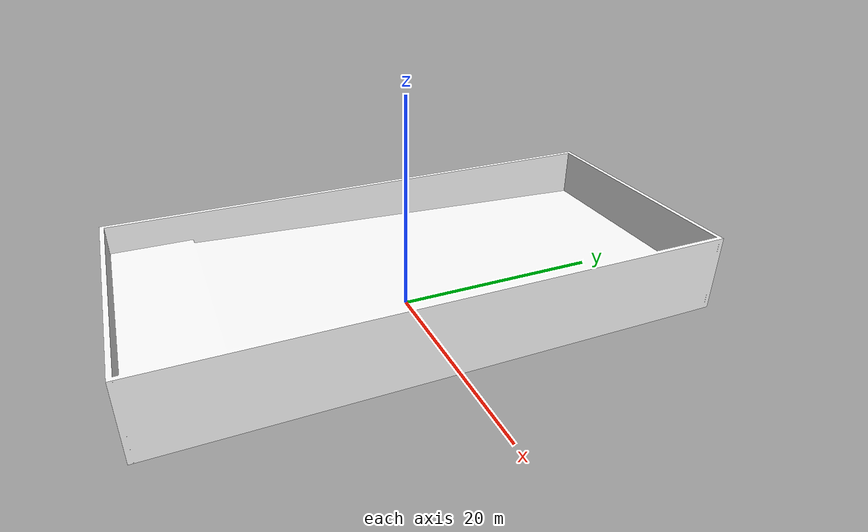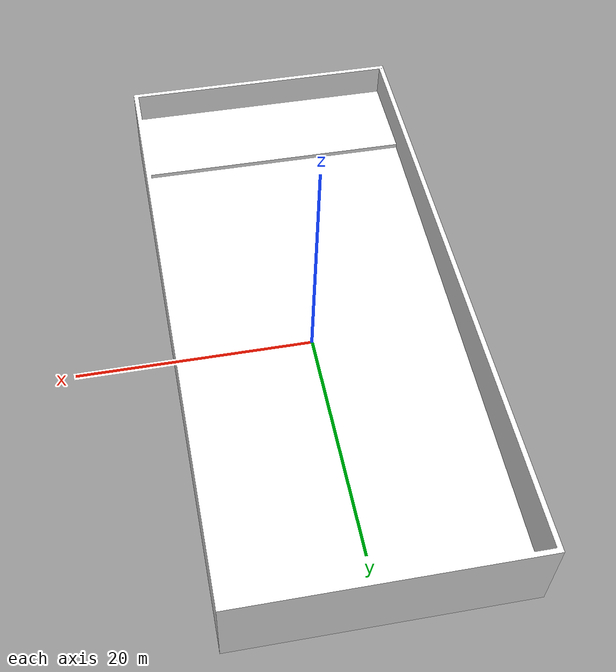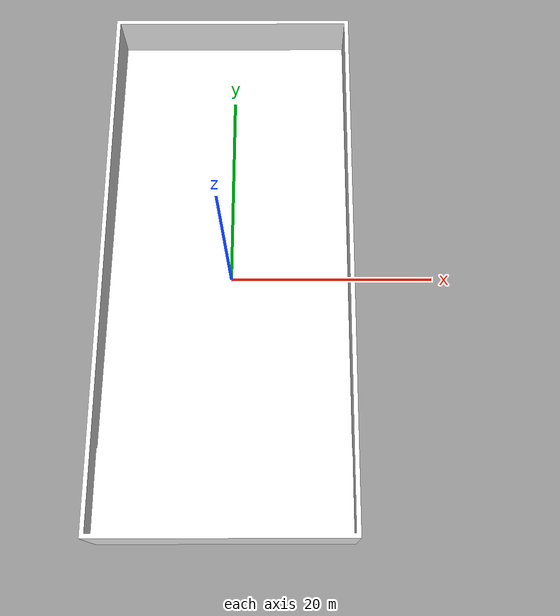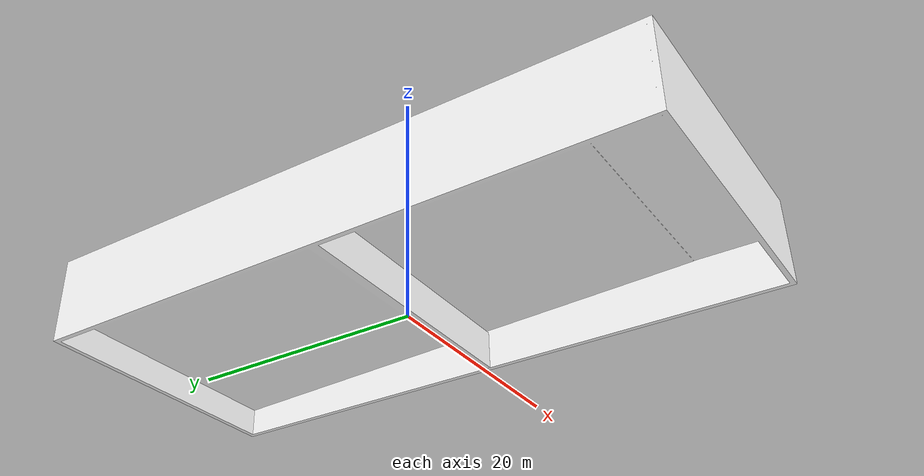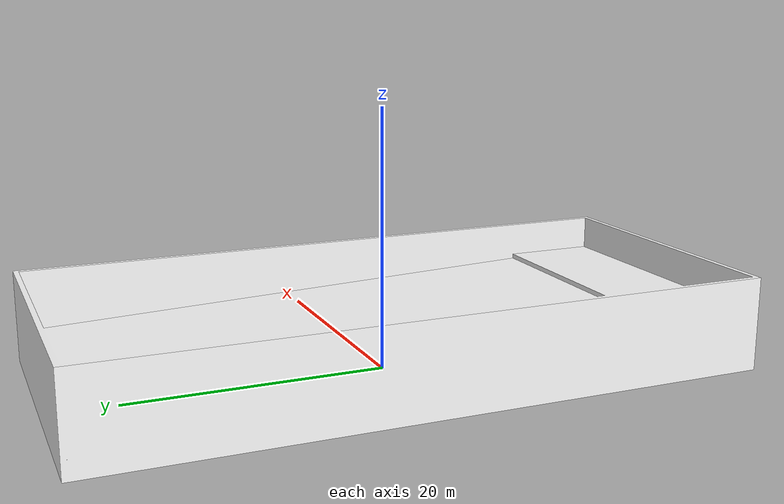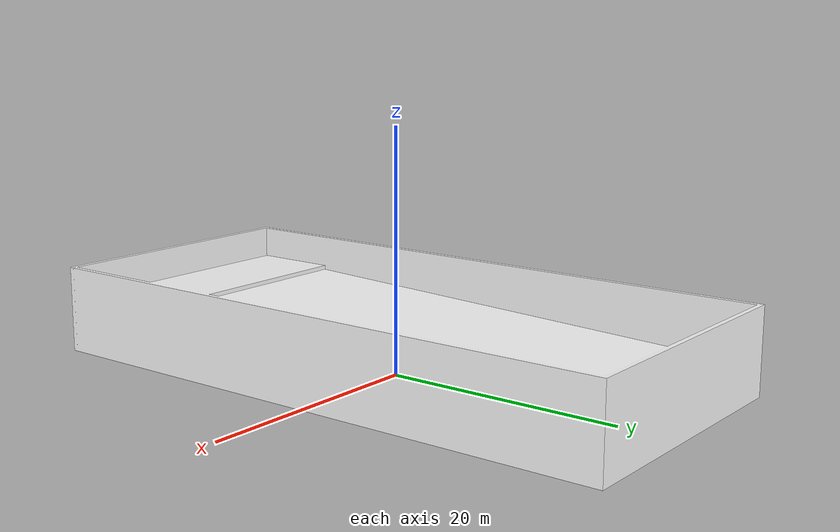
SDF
<?xml version='1.0'?>
<sdf version='1.5'>

  <model name='uompool'>
    <pose>0 0 0.1 0 0 0</pose>
    <self_collide> 0 </self_collide>
    <static> 1</static>

    <link name='pool'>
      <pose>0 0 0.1 0 0 0</pose>
      <visual name='pool_visual'>
        <geometry>
            <mesh><uri>file://pools/robosub2022_pool/UoMpool.dae</uri></mesh>
        </geometry>
      </visual>
      <collision name='pool_collision'>
        <geometry>
            <mesh><uri>file://pools/robosub2022_pool/UoMpool.dae</uri></mesh>
        </geometry>
      </collision>
    </link>

  </model>
</sdf>
